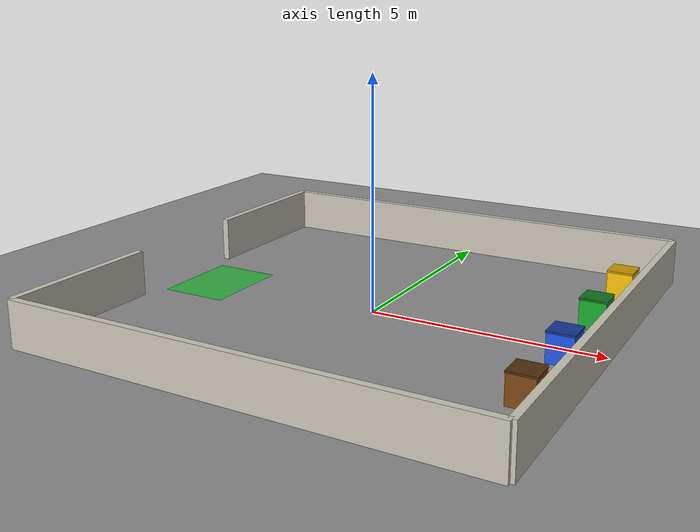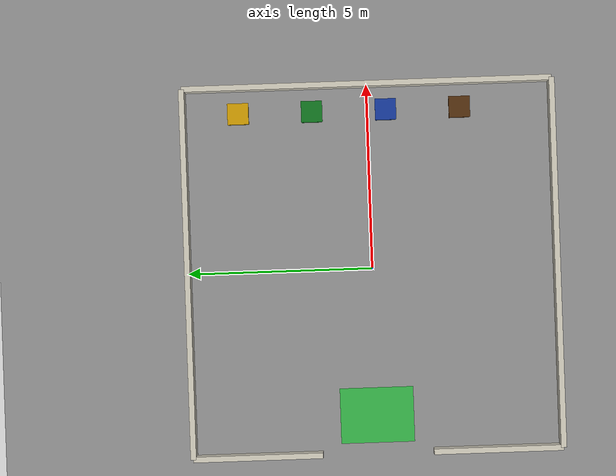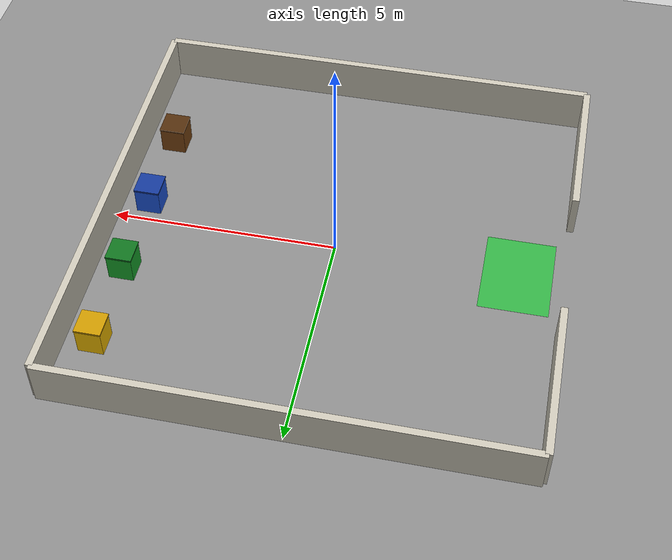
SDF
<sdf version="1.9">
 <world name="rtr_world">
  <physics name="1ms" type="ignored">
   <max_step_size>0.004</max_step_size>
   <real_time_factor>1.0</real_time_factor>
  </physics>
  <plugin filename="gz-sim-physics-system" name="gz::sim::systems::Physics"/>
  <plugin filename="gz-sim-user-commands-system" name="gz::sim::systems::UserCommands"/>
  <plugin filename="gz-sim-scene-broadcaster-system" name="gz::sim::systems::SceneBroadcaster"/>
  <plugin filename="gz-sim-sensors-system" name="gz::sim::systems::Sensors">
   <render_engine>ogre2</render_engine>
  </plugin>
  <scene>
   <ambient>0.45 0.45 0.45 1</ambient>
   <background>0.65 0.78 0.92 1</background>
   <shadows>true</shadows>
  </scene>
  <light type="directional" name="sun">
   <pose>0 0 10 0 0 0</pose>
   <diffuse>0.95 0.92 0.80 1</diffuse>
   <specular>0.30 0.30 0.30 1</specular>
   <direction>-0.5 0.1 -0.9</direction>
  </light>
  <light type="point" name="fill_light">
   <pose>0 0 4 0 0 0</pose>
   <diffuse>0.35 0.38 0.45 1</diffuse>
   <specular>0.05 0.05 0.05 1</specular>
   <attenuation>
    <range>12</range>
    <constant>0.5</constant>
    <linear>0.05</linear>
    <quadratic>0.01</quadratic>
   </attenuation>
   <cast_shadows>false</cast_shadows>
  </light>
  <light type="spot" name="spot_station">
   <pose>4.0 0.5 3.5 0 1.0 3.14</pose>
   <diffuse>0.9 0.9 1.0 1</diffuse>
   <specular>0.2 0.2 0.2 1</specular>
   <attenuation>
    <range>8</range>
    <constant>0.3</constant>
    <linear>0.02</linear>
    <quadratic>0.01</quadratic>
   </attenuation>
   <spot><inner_angle>0.5</inner_angle><outer_angle>1.0</outer_angle><falloff>1.5</falloff></spot>
   <cast_shadows>false</cast_shadows>
  </light>
  <model name="ground_plane">
   <static>true</static>
   <link name="link">
    <collision name="collision">
     <geometry><plane><normal>0 0 1</normal><size>20 20</size></plane></geometry>
    </collision>
    <visual name="visual">
     <geometry><plane><normal>0 0 1</normal><size>20 20</size></plane></geometry>
     <material>
      <ambient>0.55 0.55 0.55 1</ambient>
      <diffuse>0.55 0.55 0.55 1</diffuse>
      <specular>0.05 0.05 0.05 1</specular>
     </material>
    </visual>
   </link>
  </model>
  <model name="zone_depart">
   <static>true</static>
   <pose>-4.0 0.0 0.002 0 0 0</pose>
   <link name="link">
    <visual name="visual">
     <geometry><box><size>1.5 2.0 0.001</size></box></geometry>
     <material><ambient>0.1 0.8 0.2 0.7</ambient><diffuse>0.1 0.8 0.2 0.7</diffuse></material>
    </visual>
   </link>
  </model>
  <model name="mur_nord">
   <static>true</static>
   <pose>0 5 0.5 0 0 0</pose>
   <link name="link">
    <collision name="collision"><geometry><box><size>10 0.15 1</size></box></geometry></collision>
    <visual name="visual">
     <geometry><box><size>10 0.15 1</size></box></geometry>
     <material><ambient>0.80 0.78 0.72 1</ambient><diffuse>0.80 0.78 0.72 1</diffuse></material>
    </visual>
   </link>
  </model>
  <model name="mur_sud">
   <static>true</static>
   <pose>0 -5 0.5 0 0 0</pose>
   <link name="link">
    <collision name="collision"><geometry><box><size>10 0.15 1</size></box></geometry></collision>
    <visual name="visual">
     <geometry><box><size>10 0.15 1</size></box></geometry>
     <material><ambient>0.80 0.78 0.72 1</ambient><diffuse>0.80 0.78 0.72 1</diffuse></material>
    </visual>
   </link>
  </model>
  <model name="mur_est">
   <static>true</static>
   <pose>5 0 0.5 0 0 0</pose>
   <link name="link">
    <collision name="collision"><geometry><box><size>0.15 10 1</size></box></geometry></collision>
    <visual name="visual">
     <geometry><box><size>0.15 10 1</size></box></geometry>
     <material><ambient>0.80 0.78 0.72 1</ambient><diffuse>0.80 0.78 0.72 1</diffuse></material>
    </visual>
   </link>
  </model>
  <model name="mur_ouest_nord">
   <static>true</static>
   <pose>-5 3.25 0.5 0 0 0</pose>
   <link name="link">
    <collision name="collision"><geometry><box><size>0.15 3.5 1</size></box></geometry></collision>
    <visual name="visual">
     <geometry><box><size>0.15 3.5 1</size></box></geometry>
     <material><ambient>0.80 0.78 0.72 1</ambient><diffuse>0.80 0.78 0.72 1</diffuse></material>
    </visual>
   </link>
  </model>
  <model name="mur_ouest_sud">
   <static>true</static>
   <pose>-5 -3.25 0.5 0 0 0</pose>
   <link name="link">
    <collision name="collision"><geometry><box><size>0.15 3.5 1</size></box></geometry></collision>
    <visual name="visual">
     <geometry><box><size>0.15 3.5 1</size></box></geometry>
     <material><ambient>0.80 0.78 0.72 1</ambient><diffuse>0.80 0.78 0.72 1</diffuse></material>
    </visual>
   </link>
  </model>
  <model name="bac_plastique">
   <static>true</static>
   <pose>4.3 3.5 0.30 0 0 0</pose>
   <link name="link">
    <collision name="collision"><geometry><box><size>0.55 0.55 0.60</size></box></geometry></collision>
    <visual name="corps">
     <geometry><box><size>0.55 0.55 0.60</size></box></geometry>
     <material>
      <ambient>1.00 0.78 0.00 1</ambient>
      <diffuse>1.00 0.78 0.00 1</diffuse>
      <specular>0.30 0.28 0.05 1</specular>
     </material>
    </visual>
    <visual name="couvercle">
     <pose>0 0 0.32 0 0 0</pose>
     <geometry><box><size>0.57 0.57 0.04</size></box></geometry>
     <material><ambient>0.80 0.60 0.00 1</ambient><diffuse>0.80 0.60 0.00 1</diffuse></material>
    </visual>
   </link>
  </model>
  <model name="bac_verre">
   <static>true</static>
   <pose>4.3 1.5 0.30 0 0 0</pose>
   <link name="link">
    <collision name="collision"><geometry><box><size>0.55 0.55 0.60</size></box></geometry></collision>
    <visual name="corps">
     <geometry><box><size>0.55 0.55 0.60</size></box></geometry>
     <material>
      <ambient>0.10 0.68 0.18 1</ambient>
      <diffuse>0.10 0.68 0.18 1</diffuse>
      <specular>0.05 0.30 0.10 1</specular>
     </material>
    </visual>
    <visual name="couvercle">
     <pose>0 0 0.32 0 0 0</pose>
     <geometry><box><size>0.57 0.57 0.04</size></box></geometry>
     <material><ambient>0.06 0.45 0.12 1</ambient><diffuse>0.06 0.45 0.12 1</diffuse></material>
    </visual>
   </link>
  </model>
  <model name="bac_papier">
   <static>true</static>
   <pose>4.3 -0.5 0.30 0 0 0</pose>
   <link name="link">
    <collision name="collision"><geometry><box><size>0.55 0.55 0.60</size></box></geometry></collision>
    <visual name="corps">
     <geometry><box><size>0.55 0.55 0.60</size></box></geometry>
     <material>
      <ambient>0.12 0.35 0.90 1</ambient>
      <diffuse>0.12 0.35 0.90 1</diffuse>
      <specular>0.05 0.10 0.30 1</specular>
     </material>
    </visual>
    <visual name="couvercle">
     <pose>0 0 0.32 0 0 0</pose>
     <geometry><box><size>0.57 0.57 0.04</size></box></geometry>
     <material><ambient>0.08 0.22 0.60 1</ambient><diffuse>0.08 0.22 0.60 1</diffuse></material>
    </visual>
   </link>
  </model>
  <model name="bac_organique">
   <static>true</static>
   <pose>4.3 -2.5 0.30 0 0 0</pose>
   <link name="link">
    <collision name="collision"><geometry><box><size>0.55 0.55 0.60</size></box></geometry></collision>
    <visual name="corps">
     <geometry><box><size>0.55 0.55 0.60</size></box></geometry>
     <material>
      <ambient>0.50 0.28 0.08 1</ambient>
      <diffuse>0.50 0.28 0.08 1</diffuse>
      <specular>0.10 0.06 0.02 1</specular>
     </material>
    </visual>
    <visual name="couvercle">
     <pose>0 0 0.32 0 0 0</pose>
     <geometry><box><size>0.57 0.57 0.04</size></box></geometry>
     <material><ambient>0.32 0.18 0.05 1</ambient><diffuse>0.32 0.18 0.05 1</diffuse></material>
    </visual>
   </link>
  </model>
 </world>
</sdf>
